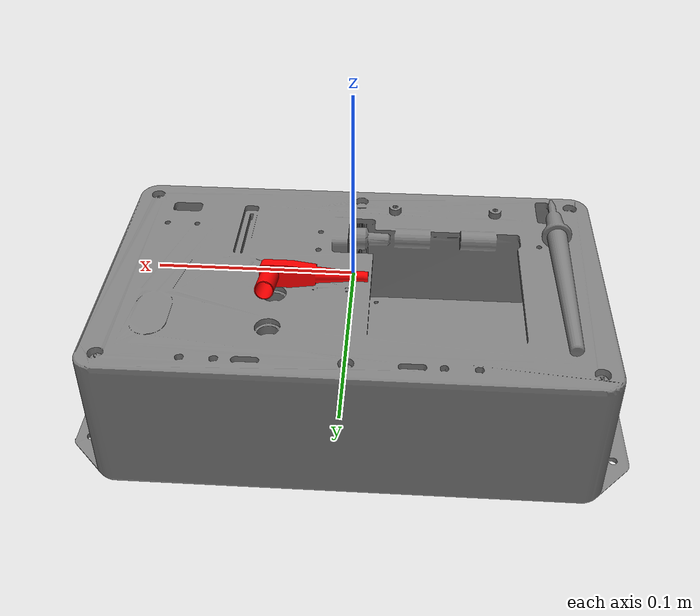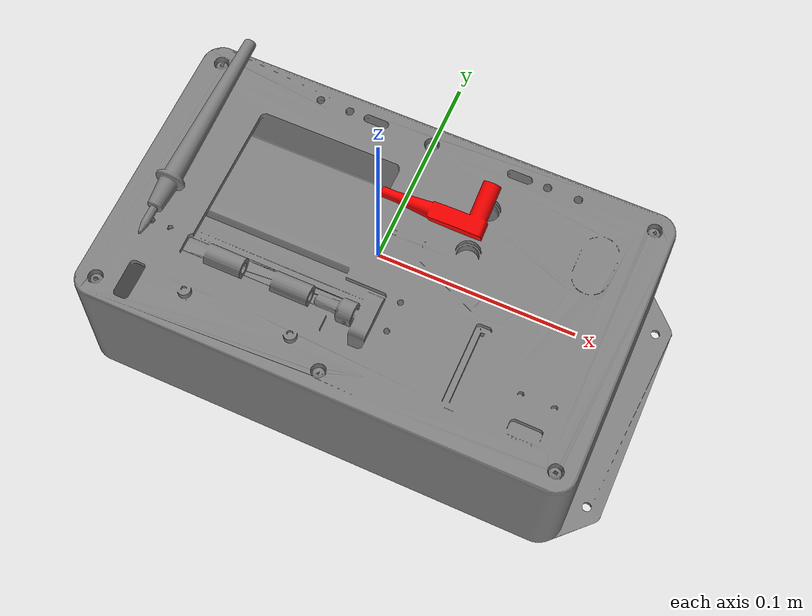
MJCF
<?xml version="1.0"?>
<mujoco model="task_board">
    <!-- Simulation parameters -->
    <option timestep="0.002" integrator="RK4" gravity="0 0 -9.81">
        <flag energy="enable" contact="enable" />
    </option>

    <!-- Compiler settings with correct mesh directory paths -->
    <compiler meshdir="../meshes" texturedir="textures" angle="radian" autolimits="false"
        balanceinertia="false" />

    <!-- Default contacts and materials -->
    <default>
        <default class="material_default">
            <material specular="0.5" shininess="0.5" />
        </default>
        <default class="contact_default">
            <geom condim="4" friction="0.5 0.5 0.0001" solimp="0.9 0.99 0.001" solref="0.02 1" />
        </default>
        <default class="task_board_visual">
            <geom contype="0" conaffinity="0" />
        </default>
        <default class="task_board_collision">
            <geom rgba="0.9 0.9 0.9 1.0" group="3" />
        </default>
        <default class="task_board_cable_plug_collision">
            <geom rgba="1.0 0.0 0.0 1.0" group="3" />
        </default>
    </default>

    <!-- Assets - mesh definitions -->
    <asset>
        <!-- Main board meshes -->
        <mesh name="TaskBoardBody" file="stl/TaskBoardMain.stl" scale="1.0 1.0 1.0" />
        <mesh name="UCX_TaskBoardBody_001" file="stl/UCX_TaskBoardMain_001.stl" scale="1.0 1.0 1.0" />
        <mesh name="UCX_TaskBoardBody_002" file="stl/UCX_TaskBoardMain_002.stl" scale="1.0 1.0 1.0" />
        <mesh name="UCX_TaskBoardBody_003" file="stl/UCX_TaskBoardMain_003.stl" scale="1.0 1.0 1.0" />
        <mesh name="UCX_TaskBoardBody_004" file="stl/UCX_TaskBoardMain_004.stl" scale="1.0 1.0 1.0" />
        <mesh name="UCX_TaskBoardBody_005" file="stl/UCX_TaskBoardMain_005.stl" scale="1.0 1.0 1.0" />
        <mesh name="UCX_TaskBoardBody_006" file="stl/UCX_TaskBoardMain_006.stl" scale="1.0 1.0 1.0" />
        <mesh name="UCX_TaskBoardBody_007" file="stl/UCX_TaskBoardMain_007.stl" scale="1.0 1.0 1.0" />
        <mesh name="UCX_TaskBoardBody_008" file="stl/UCX_TaskBoardMain_008.stl" scale="1.0 1.0 1.0" />
        <mesh name="UCX_TaskBoardBody_009" file="stl/UCX_TaskBoardMain_009.stl" scale="1.0 1.0 1.0" />
        <mesh name="UCX_TaskBoardBody_010" file="stl/UCX_TaskBoardMain_010.stl" scale="1.0 1.0 1.0" />
        <mesh name="UCX_TaskBoardBody_011" file="stl/UCX_TaskBoardMain_011.stl" scale="1.0 1.0 1.0" />
        <mesh name="UCX_TaskBoardBody_012" file="stl/UCX_TaskBoardMain_012.stl" scale="1.0 1.0 1.0" />
        <mesh name="UCX_TaskBoardBody_013" file="stl/UCX_TaskBoardMain_013.stl" scale="1.0 1.0 1.0" />
        <mesh name="UCX_TaskBoardBody_014" file="stl/UCX_TaskBoardMain_014.stl" scale="1.0 1.0 1.0" />
        <mesh name="UCX_TaskBoardBody_015" file="stl/UCX_TaskBoardMain_015.stl" scale="1.0 1.0 1.0" />
        <mesh name="UCX_TaskBoardBody_016" file="stl/UCX_TaskBoardMain_016.stl" scale="1.0 1.0 1.0" />
        <mesh name="UCX_TaskBoardBody_017" file="stl/UCX_TaskBoardMain_017.stl" scale="1.0 1.0 1.0" />
        <mesh name="UCX_TaskBoardBody_018" file="stl/UCX_TaskBoardMain_018.stl" scale="1.0 1.0 1.0" />
        <mesh name="UCX_TaskBoardBody_019" file="stl/UCX_TaskBoardMain_019.stl" scale="1.0 1.0 1.0" />
        <mesh name="UCX_TaskBoardBody_020" file="stl/UCX_TaskBoardMain_020.stl" scale="1.0 1.0 1.0" />
        <mesh name="UCX_TaskBoardBody_021" file="stl/UCX_TaskBoardMain_021.stl" scale="1.0 1.0 1.0" />
        <mesh name="UCX_TaskBoardBody_022" file="stl/UCX_TaskBoardMain_022.stl" scale="1.0 1.0 1.0" />
        <mesh name="UCX_TaskBoardBody_023" file="stl/UCX_TaskBoardMain_023.stl" scale="1.0 1.0 1.0" />
        <mesh name="UCX_TaskBoardBody_024" file="stl/UCX_TaskBoardMain_024.stl" scale="1.0 1.0 1.0" />
        <!-- M5StickC and slider meshes -->
        <mesh name="TaskBoardM5StickC" file="stl/TaskBoardM5StickC.stl" scale="1.0 1.0 1.0" />
        <mesh name="UCX_TaskBoardM5StickC_001" file="stl/UCX_TaskBoardM5StickC_001.stl"
            scale="1.0 1.0 1.0" />
        <mesh name="TaskBoardSlider" file="stl/TaskBoardSlider.stl" scale="1.0 1.0 1.0" />
        <mesh name="UCX_TaskBoardSlider_001" file="stl/UCX_TaskBoardSlider_001.stl"
            scale="1.0 1.0 1.0" />
        <!-- Banana plug meshes -->
        <mesh name="TaskBoardBananaPlug" file="stl/TaskBoardBananaPlug.stl" scale="1.0 1.0 1.0" />
        <mesh name="UCX_TaskBoardBananaPlugPort_001" file="stl/UCX_TaskBoardBananaPlugPort_001.stl"
            scale="1.0 1.0 1.0" />
        <mesh name="UCX_TaskBoardBananaPlugPort_002" file="stl/UCX_TaskBoardBananaPlugPort_002.stl"
            scale="1.0 1.0 1.0" />
        <mesh name="UCX_TaskBoardBananaPlugPort_003" file="stl/UCX_TaskBoardBananaPlugPort_003.stl"
            scale="1.0 1.0 1.0" />
        <mesh name="UCX_TaskBoardBananaPlugPort_004" file="stl/UCX_TaskBoardBananaPlugPort_004.stl"
            scale="1.0 1.0 1.0" />
        <mesh name="UCX_TaskBoardBananaPlugPort_005" file="stl/UCX_TaskBoardBananaPlugPort_005.stl"
            scale="1.0 1.0 1.0" />
        <mesh name="UCX_TaskBoardBananaPlugPort_006" file="stl/UCX_TaskBoardBananaPlugPort_006.stl"
            scale="1.0 1.0 1.0" />
        <!-- Probe meshes -->
        <mesh name="TaskBoardProbe" file="stl/TaskBoardProbe.stl" scale="1.0 1.0 1.0" />
        <mesh name="UCX_TaskBoardProbe_001" file="stl/UCX_TaskBoardProbe_001.stl"
            scale="1.0 1.0 1.0" />
        <mesh name="UCX_TaskBoardProbe_002" file="stl/UCX_TaskBoardProbe_002.stl"
            scale="1.0 1.0 1.0" />
        <mesh name="UCX_TaskBoardProbe_003" file="stl/UCX_TaskBoardProbe_003.stl"
            scale="1.0 1.0 1.0" />
        <mesh name="UCX_TaskBoardProbe_004" file="stl/UCX_TaskBoardProbe_004.stl"
            scale="1.0 1.0 1.0" />
        <!-- Cable plug meshes -->
        <mesh name="TaskBoardCablePlug" file="stl/TaskBoardCablePlug.stl" scale="1.0 1.0 1.0" />
        <mesh name="UCX_TaskBoardCablePlug_001" file="stl/UCX_TaskBoardCablePlug_001.stl"
            scale="1.0 1.0 1.0" />
        <mesh name="UCX_TaskBoardCablePlug_002" file="stl/UCX_TaskBoardCablePlug_002.stl"
            scale="1.0 1.0 1.0" />
    </asset>

    <!-- World body with task board components -->
    <worldbody>
        <!-- Task board root body -->
        <body name="task_board" pos="0.0 0.0 0.0" quat="1.0 0.0 0.0 0.0">
            <!-- Task board main structure -->
            <body name="task_board_main" pos="0.0 0.0 0.0" quat="1.0 0.0 0.0 0.0">
                <!-- Main board body -->
                <body name="task_board_body" pos="0.0 0.0 0.0" quat="1.0 0.0 0.0 0.0">
                    <inertial mass="7.616941928863525"
                        pos="-0.0011780796339735389 -3.9309339626925066e-05 -0.039935238659381866"
                        quat="0.00119794683996588 0.6997284293174744 0.007045551668852568 0.7143731713294983"
                        diaginertia="0.05582557991147041 0.04489736631512642 0.018900347873568535" />

                    <!-- Visual geometry -->
                    <geom name="task_board_body_visual" type="mesh"
                        pos="-0.0013512435834854841 -4.9608697736402974e-05 -0.039861757308244705"
                        quat="0.0014318180037662387 0.6994011998176575 0.007516392506659031 0.7146883606910706"
                        mesh="TaskBoardBody" rgba="0.5 0.5 0.5 1.0" class="task_board_visual" />

                    <!-- Collision geometry -->
                    <geom name="task_board_body_collision_001" type="mesh"
                        pos="-0.0006921887979842722 0.0005634986446239054 -0.07817842066287994"
                        quat="0.0 0.7071067690849304 0.0 0.7071067690849304"
                        mesh="UCX_TaskBoardBody_001" class="task_board_collision" />
                    <geom name="task_board_body_collision_002" type="mesh"
                        pos="-0.0007403581403195858 -0.07277718186378479 -0.040174443274736404"
                        quat="0.5065849423408508 0.4933449923992157 0.506567120552063 0.49332764744758606"
                        mesh="UCX_TaskBoardBody_002" class="task_board_collision" />
                    <geom name="task_board_body_collision_003" type="mesh"
                        pos="-0.0007051100837998092 0.07390077412128448 -0.04017476737499237"
                        quat="0.49333223700523376 0.5065765380859375 0.4933401346206665 0.5065757632255554"
                        mesh="UCX_TaskBoardBody_003" class="task_board_collision" />
                    <geom name="task_board_body_collision_004" type="mesh"
                        pos="-0.1272374540567398 0.000563445792067796 -0.040238115936517715"
                        quat="0.7070314288139343 0.7070314288139343 0.010323220863938332 -0.010323220863938332"
                        mesh="UCX_TaskBoardBody_004" class="task_board_collision" />
                    <geom name="task_board_body_collision_005" type="mesh"
                        pos="0.12583637237548828 0.000556890678126365 -0.04023807868361473"
                        quat="0.7070314288139343 0.7070314288139343 -0.010323233902454376 0.010323233902454376"
                        mesh="UCX_TaskBoardBody_005" class="task_board_collision" />
                    <geom name="task_board_body_collision_006" type="mesh"
                        pos="0.09508127719163895 0.0005627145292237401 -0.0016510002315044403"
                        quat="0.49999669194221497 0.5000033378601074 -0.49999669194221497 0.5000033378601074"
                        mesh="UCX_TaskBoardBody_006" class="task_board_collision" />
                    <geom name="task_board_body_collision_007" type="mesh"
                        pos="-0.10720948874950409 0.0005629970692098141 -0.0016510002315044403"
                        quat="0.500001072883606 0.49999892711639404 -0.500001072883606 0.49999892711639404"
                        mesh="UCX_TaskBoardBody_007" class="task_board_collision" />
                    <geom name="task_board_body_collision_008" type="mesh"
                        pos="-0.08628399670124054 0.025334490463137627 -0.0016510002315044403"
                        quat="0.7071067690849304 0.7071067690849304 0.0 0.0"
                        mesh="UCX_TaskBoardBody_008" class="task_board_collision" />
                    <geom name="task_board_body_collision_009" type="mesh"
                        pos="-0.04828399792313576 -0.056859493255615234 -0.0016510002315044403"
                        quat="0.0 0.7071067690849304 0.0 0.7071067690849304"
                        mesh="UCX_TaskBoardBody_009" class="task_board_collision" />
                    <geom name="task_board_body_collision_010" type="mesh"
                        pos="0.02357950061559677 -0.06173449009656906 -0.0016510002315044403"
                        quat="0.0 0.7071067690849304 0.0 0.7071067690849304"
                        mesh="UCX_TaskBoardBody_010" class="task_board_collision" />
                    <geom name="task_board_body_collision_011" type="mesh"
                        pos="0.06044299528002739 -0.06620799005031586 -0.0016510002315044403"
                        quat="0.5 0.5 -0.5 0.5" mesh="UCX_TaskBoardBody_011"
                        class="task_board_collision" />
                    <geom name="task_board_body_collision_012" type="mesh"
                        pos="0.034579500555992126 -0.032332997769117355 -0.0016510002315044403"
                        quat="0.0 0.7071067690849304 0.0 0.7071067690849304"
                        mesh="UCX_TaskBoardBody_012" class="task_board_collision" />
                    <geom name="task_board_body_collision_013" type="mesh"
                        pos="0.023579496890306473 -0.002088000299409032 -0.0016510002315044403"
                        quat="0.0 0.7071067690849304 0.0 0.7071067690849304"
                        mesh="UCX_TaskBoardBody_013" class="task_board_collision" />
                    <geom name="task_board_body_collision_014" type="mesh"
                        pos="0.06044299900531769 0.031991489231586456 -0.0016510002315044403"
                        quat="0.5 0.5 -0.5 0.5" mesh="UCX_TaskBoardBody_014"
                        class="task_board_collision" />
                    <geom name="task_board_body_collision_015" type="mesh"
                        pos="0.023579496890306473 0.06345998495817184 -0.0016510002315044403"
                        quat="0.0 0.7071067690849304 0.0 0.7071067690849304"
                        mesh="UCX_TaskBoardBody_015" class="task_board_collision" />
                    <geom name="task_board_body_collision_016" type="mesh"
                        pos="0.023579496890306473 0.03140699863433838 -0.0016510002315044403"
                        quat="0.0 0.7071067690849304 0.0 0.7071067690849304"
                        mesh="UCX_TaskBoardBody_016" class="task_board_collision" />
                    <geom name="task_board_body_collision_017" type="mesh"
                        pos="0.050563499331474304 0.04390700161457062 -0.0016510002315044403"
                        quat="0.5 0.5 -0.5 0.5" mesh="UCX_TaskBoardBody_017"
                        class="task_board_collision" />
                    <geom name="task_board_body_collision_018" type="mesh"
                        pos="0.050563499331474304 0.01890699751675129 -0.0016510002315044403"
                        quat="0.5 0.5 -0.5 0.5" mesh="UCX_TaskBoardBody_018"
                        class="task_board_collision" />
                    <geom name="task_board_body_collision_019" type="mesh"
                        pos="0.01145949773490429 0.01890699751675129 -0.0016510002315044403"
                        quat="0.0 0.7071067690849304 0.0 0.7071067690849304"
                        mesh="UCX_TaskBoardBody_019" class="task_board_collision" />
                    <geom name="task_board_body_collision_020" type="mesh"
                        pos="0.01145949773490429 0.04390700161457062 -0.0016510002315044403"
                        quat="0.0 0.7071067690849304 0.0 0.7071067690849304"
                        mesh="UCX_TaskBoardBody_020" class="task_board_collision" />
                    <geom name="task_board_body_collision_021" type="mesh"
                        pos="-0.047283995896577835 0.06283999979496002 -0.0016510002315044403"
                        quat="0.0 0.7071067690849304 0.0 0.7071067690849304"
                        mesh="UCX_TaskBoardBody_021" class="task_board_collision" />
                    <geom name="task_board_body_collision_022" type="mesh"
                        pos="0.008515998721122742 -0.03233299404382706 -0.010401993989944458"
                        quat="1.0 0.0 0.0 0.0" mesh="UCX_TaskBoardBody_022"
                        class="task_board_collision" />
                    <geom name="task_board_body_collision_023" type="mesh"
                        pos="0.000116005539894104 -0.03203300014138222 -0.0019019992323592305"
                        quat="1.0 0.0 0.0 0.0" mesh="UCX_TaskBoardBody_023"
                        class="task_board_collision" />
                    <geom name="task_board_body_collision_024" type="mesh"
                        pos="-0.010883995331823826 -0.03203300014138222 -0.0019019993487745523"
                        quat="0.0 1.0 0.0 0.0" mesh="UCX_TaskBoardBody_024"
                        class="task_board_collision" />
                </body>
            </body>
        </body>

        <!-- Probe (floating object) -->
        <body name="task_board_probe" pos="-0.101844 -0.007 0.019" quat="1.0 0.0 0.0 0.0">
            <inertial mass="0.006231526378542185"
                pos="-2.27348695425178e-11 0.0001277880510315299 -3.0341962276025924e-09"
                quat="-0.4846147894859314 -0.5149257183074951 0.5149257183074951 0.4846147894859314"
                diaginertia="6.648315320489928e-08 5.043107648816658e-06 5.043107648816658e-06" />
            <freejoint />
            <geom name="task_board_probe_visual" type="mesh"
                pos="-1.1167492885988395e-07 0.016684556379914284 2.0637875408624495e-08"
                quat="0.7071067690849304 0.7071067690849304 0.0 0.0" mesh="TaskBoardProbe"
                rgba="0.5 0.5 0.5 1.0" class="task_board_visual" />
            <geom name="task_board_probe_collision_001" type="mesh"
                pos="-1.2777578474454376e-12 -0.028279362246394157 -1.9006438645163826e-09"
                quat="0.7071067690849304 0.7071067690849304 0.0 0.0" mesh="UCX_TaskBoardProbe_001"
                class="task_board_collision" />
            <geom name="task_board_probe_collision_002" type="mesh"
                pos="-2.993737419423881e-12 -0.014133143238723278 -3.2889999612706333e-09"
                quat="0.7071067690849304 0.7071067690849304 0.0 0.0" mesh="UCX_TaskBoardProbe_002"
                class="task_board_collision" />
            <geom name="task_board_probe_collision_003" type="mesh"
                pos="1.3151225984955883e-12 -0.00588131882250309 -2.1292419216667469e-10"
                quat="0.7071067690849304 0.0 0.0 0.7071067690849304" mesh="UCX_TaskBoardProbe_003"
                class="task_board_collision" />
            <geom name="task_board_probe_collision_004" type="mesh"
                pos="6.804208238508913e-12 0.031408458948135376 -3.2541387362527985e-09"
                quat="0.7071067690849304 0.7071067690849304 0.0 0.0" mesh="UCX_TaskBoardProbe_004"
                class="task_board_collision" />
        </body>

        <!-- Cable plug (floating object) -->
        <body name="task_board_cable_plug" pos="0.03844299912452698 0.01890699937939644 0.019"
            quat="-0.7071068 0 0 0.7071068">
            <inertial mass="0.009143883362412453"
                pos="-0.00967562384903431 -4.372870676672136e-10 -4.746794729726389e-05"
                quat="0.42671170830726624 0.5638414025306702 0.5638414025306702 0.42671170830726624"
                diaginertia="1.8079294932249468e-06 1.5876109955570428e-06 3.367600811543525e-07" />
            <freejoint />
            <geom name="task_board_cable_plug_visual" type="mesh"
                pos="-0.008676216006278992 -3.99139027384976e-10 -0.0008309241384267807"
                quat="0.4194165766239166 0.5692887902259827 0.5692887902259827 0.4194165766239166"
                mesh="TaskBoardCablePlug" rgba="1.0 0.0 0.0 1.0" class="task_board_visual" />
            <geom name="task_board_cable_plug_collision_001" type="mesh"
                pos="-0.0078870989382267 -2.2360559237544209e-10 0.00400000112131238"
                quat="0.0 0.7071067690849304 0.0 0.7071067690849304"
                mesh="UCX_TaskBoardCablePlug_001" class="task_board_cable_plug_collision" />
            <geom name="task_board_cable_plug_collision_002" type="mesh"
                pos="-0.032687146216630936 -1.8100263510234527e-09 0.004000004380941391"
                quat="0.5 0.5 0.5 0.5" mesh="UCX_TaskBoardCablePlug_002"
                class="task_board_cable_plug_collision" />
            <geom name="task_board_cable_plug_collision_003" type="cylinder"
                pos="0.0 0.0 -0.008999999612569809" quat="1.0 0.0 0.0 0.0"
                size="0.004000000189989805 0.008999999612569809"
                class="task_board_cable_plug_collision" />
        </body>
    </worldbody>

    <!-- Sensors for monitoring -->
    <sensor>
        <!-- Body position sensors -->
        <framepos name="task_board_body_pos" objtype="body" objname="task_board_body" />
        <framequat name="task_board_body_quat" objtype="body" objname="task_board_body" />
        <framelinvel name="task_board_body_linvel" objtype="body" objname="task_board_body" />
        <frameangvel name="task_board_body_angvel" objtype="body" objname="task_board_body" />

        <!-- Probe sensors (floating object) -->
        <framepos name="task_board_probe_pos" objtype="body" objname="task_board_probe" />
        <framequat name="task_board_probe_quat" objtype="body" objname="task_board_probe" />
        <framelinvel name="task_board_probe_linvel" objtype="body" objname="task_board_probe" />
        <frameangvel name="task_board_probe_angvel" objtype="body" objname="task_board_probe" />

        <!-- Cable plug sensors (floating object) -->
        <framepos name="task_board_cable_plug_pos" objtype="body" objname="task_board_cable_plug" />
        <framequat name="task_board_cable_plug_quat" objtype="body" objname="task_board_cable_plug" />
        <framelinvel name="task_board_cable_plug_linvel" objtype="body"
            objname="task_board_cable_plug" />
        <frameangvel name="task_board_cable_plug_angvel" objtype="body"
            objname="task_board_cable_plug" />
    </sensor>
</mujoco>
